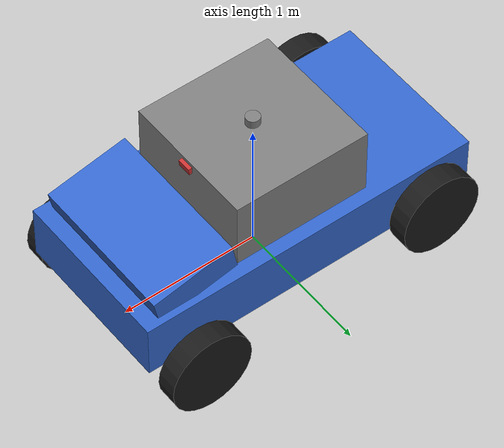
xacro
<?xml version="1.0"?>
<robot xmlns:xacro="http://www.ros.org/wiki/xacro" name="ackermann_vehicle">

  <!-- Vehicle Parameters -->
  <xacro:property name="chassis_length" value="2.5"/>
  <xacro:property name="chassis_width" value="1.2"/>
  <xacro:property name="chassis_height" value="0.4"/>
  <xacro:property name="chassis_mass" value="500.0"/>

  <xacro:property name="wheel_radius" value="0.3"/>
  <xacro:property name="wheel_width" value="0.15"/>
  <xacro:property name="wheel_mass" value="10.0"/>

  <xacro:property name="wheelbase" value="1.8"/>
  <xacro:property name="track_width" value="1.4"/>

  <xacro:property name="steering_limit" value="0.6"/>

  <!-- Colors -->
  <material name="blue">
    <color rgba="0.2 0.4 0.8 1.0"/>
  </material>
  <material name="black">
    <color rgba="0.1 0.1 0.1 1.0"/>
  </material>
  <material name="grey">
    <color rgba="0.5 0.5 0.5 1.0"/>
  </material>
  <material name="red">
    <color rgba="0.8 0.2 0.2 1.0"/>
  </material>

  <!-- Inertia Macros -->
  <xacro:macro name="box_inertia" params="m x y z">
    <inertia ixx="${m*(y*y+z*z)/12}" ixy="0" ixz="0"
             iyy="${m*(x*x+z*z)/12}" iyz="0"
             izz="${m*(x*x+y*y)/12}"/>
  </xacro:macro>

  <xacro:macro name="cylinder_inertia" params="m r h">
    <inertia ixx="${m*(3*r*r+h*h)/12}" ixy="0" ixz="0"
             iyy="${m*(3*r*r+h*h)/12}" iyz="0"
             izz="${m*r*r/2}"/>
  </xacro:macro>

  <!-- Base Footprint -->
  <link name="base_footprint"/>

  <!-- Chassis -->
  <link name="base_link">
    <visual>
      <geometry>
        <box size="${chassis_length} ${chassis_width} ${chassis_height}"/>
      </geometry>
      <material name="blue"/>
    </visual>
    <collision>
      <geometry>
        <box size="${chassis_length} ${chassis_width} ${chassis_height}"/>
      </geometry>
    </collision>
    <inertial>
      <mass value="${chassis_mass}"/>
      <xacro:box_inertia m="${chassis_mass}" x="${chassis_length}" y="${chassis_width}" z="${chassis_height}"/>
    </inertial>
  </link>

  <joint name="base_footprint_joint" type="fixed">
    <parent link="base_footprint"/>
    <child link="base_link"/>
    <origin xyz="0 0 ${wheel_radius + 0.1}" rpy="0 0 0"/>
  </joint>

  <!-- Hood/Front section for visual appeal -->
  <link name="hood_link">
    <visual>
      <geometry>
        <box size="0.6 ${chassis_width - 0.1} 0.2"/>
      </geometry>
      <origin xyz="0 0 0.1" rpy="0 0.2 0"/>
      <material name="blue"/>
    </visual>
    <collision>
      <geometry>
        <box size="0.6 ${chassis_width - 0.1} 0.2"/>
      </geometry>
    </collision>
    <inertial>
      <mass value="20.0"/>
      <xacro:box_inertia m="20.0" x="0.6" y="${chassis_width - 0.1}" z="0.2"/>
    </inertial>
  </link>

  <joint name="hood_joint" type="fixed">
    <parent link="base_link"/>
    <child link="hood_link"/>
    <origin xyz="${chassis_length/2 - 0.4} 0 ${chassis_height/2}" rpy="0 0 0"/>
  </joint>

  <!-- Cabin -->
  <link name="cabin_link">
    <visual>
      <geometry>
        <box size="1.0 ${chassis_width - 0.2} 0.5"/>
      </geometry>
      <material name="grey"/>
    </visual>
    <collision>
      <geometry>
        <box size="1.0 ${chassis_width - 0.2} 0.5"/>
      </geometry>
    </collision>
    <inertial>
      <mass value="50.0"/>
      <xacro:box_inertia m="50.0" x="1.0" y="${chassis_width - 0.2}" z="0.5"/>
    </inertial>
  </link>

  <joint name="cabin_joint" type="fixed">
    <parent link="base_link"/>
    <child link="cabin_link"/>
    <origin xyz="0 0 ${chassis_height/2 + 0.25}" rpy="0 0 0"/>
  </joint>

  <!-- Wheel Macro -->
  <xacro:macro name="wheel" params="prefix x_offset y_offset">
    <link name="${prefix}_wheel_link">
      <visual>
        <geometry>
          <cylinder radius="${wheel_radius}" length="${wheel_width}"/>
        </geometry>
        <origin xyz="0 0 0" rpy="${pi/2} 0 0"/>
        <material name="black"/>
      </visual>
      <collision>
        <geometry>
          <cylinder radius="${wheel_radius}" length="${wheel_width}"/>
        </geometry>
        <origin xyz="0 0 0" rpy="${pi/2} 0 0"/>
      </collision>
      <inertial>
        <mass value="${wheel_mass}"/>
        <origin xyz="0 0 0" rpy="${pi/2} 0 0"/>
        <xacro:cylinder_inertia m="${wheel_mass}" r="${wheel_radius}" h="${wheel_width}"/>
      </inertial>
    </link>
  </xacro:macro>

  <!-- Steering Link Macro (for front wheels) -->
  <xacro:macro name="steering_link" params="prefix y_offset">
    <link name="${prefix}_steering_link">
      <visual>
        <geometry>
          <cylinder radius="0.02" length="0.1"/>
        </geometry>
        <material name="grey"/>
      </visual>
      <collision>
        <geometry>
          <cylinder radius="0.02" length="0.1"/>
        </geometry>
      </collision>
      <inertial>
        <mass value="1.0"/>
        <xacro:cylinder_inertia m="1.0" r="0.02" h="0.1"/>
      </inertial>
    </link>

    <joint name="${prefix}_steering_joint" type="revolute">
      <parent link="base_link"/>
      <child link="${prefix}_steering_link"/>
      <origin xyz="${wheelbase/2} ${y_offset} ${-0.1}" rpy="0 0 0"/>
      <axis xyz="0 0 1"/>
      <limit lower="${-steering_limit}" upper="${steering_limit}" effort="100" velocity="1.0"/>
      <dynamics damping="0.1" friction="0.1"/>
    </joint>
  </xacro:macro>

  <!-- Front Left Wheel with Steering -->
  <xacro:steering_link prefix="front_left" y_offset="${track_width/2}"/>
  <xacro:wheel prefix="front_left" x_offset="${wheelbase/2}" y_offset="${track_width/2}"/>

  <joint name="front_left_wheel_joint" type="continuous">
    <parent link="front_left_steering_link"/>
    <child link="front_left_wheel_link"/>
    <origin xyz="0 0 ${-wheel_radius + 0.1}" rpy="0 0 0"/>
    <axis xyz="0 1 0"/>
    <dynamics damping="0.1" friction="0.1"/>
  </joint>

  <!-- Front Right Wheel with Steering -->
  <xacro:steering_link prefix="front_right" y_offset="${-track_width/2}"/>
  <xacro:wheel prefix="front_right" x_offset="${wheelbase/2}" y_offset="${-track_width/2}"/>

  <joint name="front_right_wheel_joint" type="continuous">
    <parent link="front_right_steering_link"/>
    <child link="front_right_wheel_link"/>
    <origin xyz="0 0 ${-wheel_radius + 0.1}" rpy="0 0 0"/>
    <axis xyz="0 1 0"/>
    <dynamics damping="0.1" friction="0.1"/>
  </joint>

  <!-- Rear Left Wheel (Drive) -->
  <xacro:wheel prefix="rear_left" x_offset="${-wheelbase/2}" y_offset="${track_width/2}"/>

  <joint name="rear_left_wheel_joint" type="continuous">
    <parent link="base_link"/>
    <child link="rear_left_wheel_link"/>
    <origin xyz="${-wheelbase/2} ${track_width/2} ${-0.1}" rpy="0 0 0"/>
    <axis xyz="0 1 0"/>
    <dynamics damping="0.1" friction="0.1"/>
  </joint>

  <!-- Rear Right Wheel (Drive) -->
  <xacro:wheel prefix="rear_right" x_offset="${-wheelbase/2}" y_offset="${-track_width/2}"/>

  <joint name="rear_right_wheel_joint" type="continuous">
    <parent link="base_link"/>
    <child link="rear_right_wheel_link"/>
    <origin xyz="${-wheelbase/2} ${-track_width/2} ${-0.1}" rpy="0 0 0"/>
    <axis xyz="0 1 0"/>
    <dynamics damping="0.1" friction="0.1"/>
  </joint>

  <!-- Camera for LLM Vision -->
  <link name="camera_link">
    <visual>
      <geometry>
        <box size="0.05 0.1 0.05"/>
      </geometry>
      <material name="red"/>
    </visual>
    <collision>
      <geometry>
        <box size="0.05 0.1 0.05"/>
      </geometry>
    </collision>
    <inertial>
      <mass value="0.1"/>
      <xacro:box_inertia m="0.1" x="0.05" y="0.1" z="0.05"/>
    </inertial>
  </link>

  <joint name="camera_joint" type="fixed">
    <parent link="cabin_link"/>
    <child link="camera_link"/>
    <origin xyz="0.5 0 0.2" rpy="0 0.1 0"/>
  </joint>

  <link name="camera_optical_frame"/>

  <joint name="camera_optical_joint" type="fixed">
    <parent link="camera_link"/>
    <child link="camera_optical_frame"/>
    <origin xyz="0 0 0" rpy="${-pi/2} 0 ${-pi/2}"/>
  </joint>

  <!-- Lidar for parking detection -->
  <link name="lidar_link">
    <visual>
      <geometry>
        <cylinder radius="0.05" length="0.06"/>
      </geometry>
      <material name="grey"/>
    </visual>
    <collision>
      <geometry>
        <cylinder radius="0.05" length="0.06"/>
      </geometry>
    </collision>
    <inertial>
      <mass value="0.5"/>
      <xacro:cylinder_inertia m="0.5" r="0.05" h="0.06"/>
    </inertial>
  </link>

  <joint name="lidar_joint" type="fixed">
    <parent link="cabin_link"/>
    <child link="lidar_link"/>
    <origin xyz="0 0 0.28" rpy="0 0 0"/>
  </joint>

  <!-- Gazebo Fortress (Ignition) Plugins -->
  <gazebo>
    <plugin
      filename="libignition-gazebo-ackermann-steering-system.so"
      name="ignition::gazebo::systems::AckermannSteering">
      <left_joint>rear_left_wheel_joint</left_joint>
      <right_joint>rear_right_wheel_joint</right_joint>
      <left_steering_joint>front_left_steering_joint</left_steering_joint>
      <right_steering_joint>front_right_steering_joint</right_steering_joint>
      <kingpin_distance>${track_width}</kingpin_distance>
      <wheel_base>${wheelbase}</wheel_base>
      <wheel_radius>${wheel_radius}</wheel_radius>
      <topic>/cmd_vel</topic>
      <odom_topic>/odom</odom_topic>
      <min_velocity>-5.0</min_velocity>
      <max_velocity>5.0</max_velocity>
      <min_acceleration>-2.0</min_acceleration>
      <max_acceleration>2.0</max_acceleration>
    </plugin>
  </gazebo>

  <!-- Gazebo Camera Plugin -->
  <gazebo reference="camera_link">
    <sensor type="camera" name="front_camera">
      <update_rate>30.0</update_rate>
      <camera name="front_camera">
        <horizontal_fov>1.3962634</horizontal_fov>
        <image>
          <width>640</width>
          <height>480</height>
          <format>R8G8B8</format>
        </image>
        <clip>
          <near>0.02</near>
          <far>100</far>
        </clip>
        <noise>
          <type>gaussian</type>
          <mean>0.0</mean>
          <stddev>0.007</stddev>
        </noise>
      </camera>
      <!-- No plugin needed here for Ignition, handled by ros_gz_bridge -->
    </sensor>
    <material>Gazebo/Red</material>
  </gazebo>

  <!-- Gazebo Lidar Plugin -->
  <gazebo reference="lidar_link">
    <sensor type="gpu_lidar" name="lidar">
      <pose>0 0 0 0 0 0</pose>
      <visualize>true</visualize>
      <update_rate>10</update_rate>
      <ray>
        <scan>
          <horizontal>
            <samples>360</samples>
            <resolution>1</resolution>
            <min_angle>-3.14159</min_angle>
            <max_angle>3.14159</max_angle>
          </horizontal>
        </scan>
        <range>
          <min>0.1</min>
          <max>30.0</max>
          <resolution>0.01</resolution>
        </range>
        <noise>
          <type>gaussian</type>
          <mean>0.0</mean>
          <stddev>0.01</stddev>
        </noise>
      </ray>
      <!-- No plugin needed here for Ignition, handled by ros_gz_bridge -->
    </sensor>
    <material>Gazebo/Grey</material>
  </gazebo>

  <!-- Gazebo Materials -->
  <gazebo reference="base_link">
    <material>Gazebo/Blue</material>
  </gazebo>
  <gazebo reference="hood_link">
    <material>Gazebo/Blue</material>
  </gazebo>
  <gazebo reference="cabin_link">
    <material>Gazebo/Grey</material>
  </gazebo>
  <gazebo reference="front_left_wheel_link">
    <material>Gazebo/Black</material>
    <mu1>1.5</mu1>
    <mu2>1.5</mu2>
    <kp>1000000.0</kp>
    <kd>100.0</kd>
    <minDepth>0.001</minDepth>
  </gazebo>
  <gazebo reference="front_right_wheel_link">
    <material>Gazebo/Black</material>
    <mu1>1.5</mu1>
    <mu2>1.5</mu2>
    <kp>1000000.0</kp>
    <kd>100.0</kd>
    <minDepth>0.001</minDepth>
  </gazebo>
  <gazebo reference="rear_left_wheel_link">
    <material>Gazebo/Black</material>
    <mu1>1.5</mu1>
    <mu2>1.5</mu2>
    <kp>1000000.0</kp>
    <kd>100.0</kd>
    <minDepth>0.001</minDepth>
  </gazebo>
  <gazebo reference="rear_right_wheel_link">
    <material>Gazebo/Black</material>
    <mu1>1.5</mu1>
    <mu2>1.5</mu2>
    <kp>1000000.0</kp>
    <kd>100.0</kd>
    <minDepth>0.001</minDepth>
  </gazebo>

</robot>
